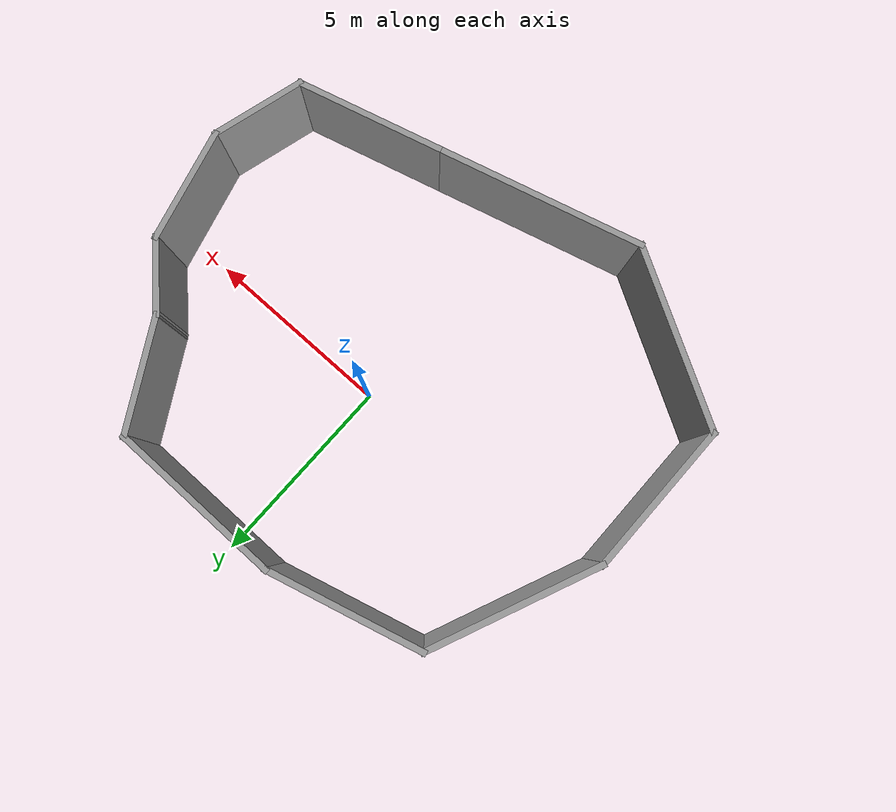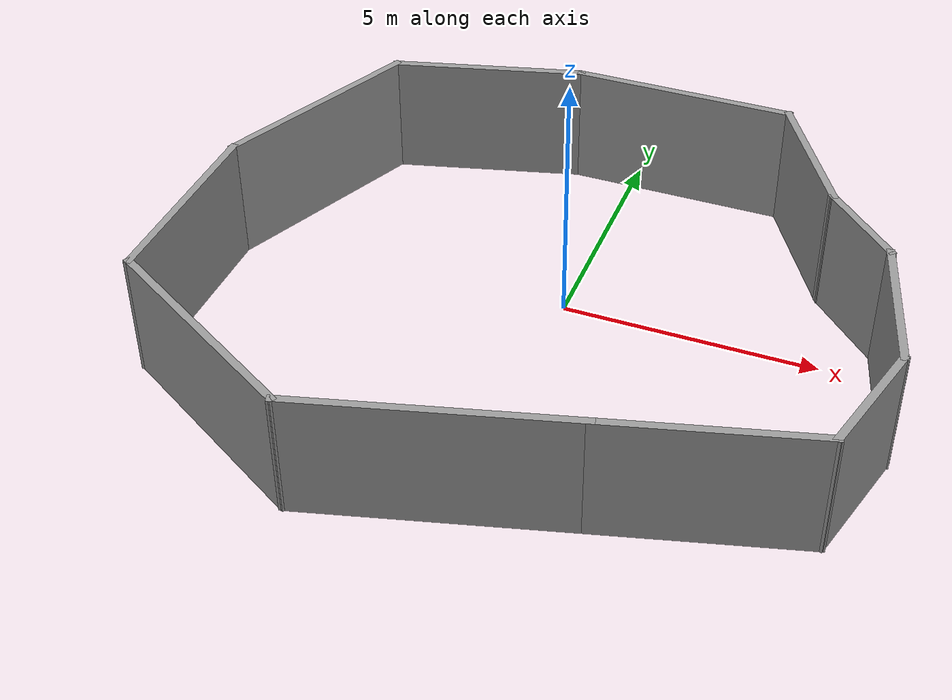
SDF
<?xml version='1.0'?>
<sdf version='1.7'>
  <model name='Untitled1'>
    <pose>-0.033269 -1.09782 0 0 -0 0</pose>
    <link name='Wall_10'>
      <collision name='Wall_10_Collision'>
        <geometry>
          <box>
            <size>3 0.15 2.5</size>
          </box>
        </geometry>
        <pose>0 0 1.25 0 -0 0</pose>
      </collision>
      <visual name='Wall_10_Visual'>
        <pose>0 0 1.25 0 -0 0</pose>
        <geometry>
          <box>
            <size>3 0.15 2.5</size>
          </box>
        </geometry>
        <material>
          <script>
            <uri>file://media/materials/scripts/gazebo.material</uri>
            <name>Gazebo/Grey</name>
          </script>
          <ambient>1 1 1 1</ambient>
        </material>
        <meta>
          <layer>0</layer>
        </meta>
      </visual>
      <pose>6.25497 0.405019 0 0 -0 1.8326</pose>
    </link>
    <link name='Wall_11'>
      <collision name='Wall_11_Collision'>
        <geometry>
          <box>
            <size>2 0.15 2.5</size>
          </box>
        </geometry>
        <pose>0 0 1.25 0 -0 0</pose>
      </collision>
      <visual name='Wall_11_Visual'>
        <pose>0 0 1.25 0 -0 0</pose>
        <geometry>
          <box>
            <size>2 0.15 2.5</size>
          </box>
        </geometry>
        <material>
          <script>
            <uri>file://media/materials/scripts/gazebo.material</uri>
            <name>Gazebo/Grey</name>
          </script>
          <ambient>1 1 1 1</ambient>
        </material>
        <meta>
          <layer>0</layer>
        </meta>
      </visual>
      <pose>5.23208 2.43554 0 0 -0 2.35619</pose>
    </link>
    <link name='Wall_12'>
      <collision name='Wall_12_Collision'>
        <geometry>
          <box>
            <size>3 0.15 2.5</size>
          </box>
        </geometry>
        <pose>0 0 1.25 0 -0 0</pose>
      </collision>
      <visual name='Wall_12_Visual'>
        <pose>0 0 1.25 0 -0 0</pose>
        <geometry>
          <box>
            <size>3 0.15 2.5</size>
          </box>
        </geometry>
        <material>
          <script>
            <uri>file://media/materials/scripts/gazebo.material</uri>
            <name>Gazebo/Grey</name>
          </script>
          <ambient>1 1 1 1</ambient>
        </material>
        <meta>
          <layer>0</layer>
        </meta>
      </visual>
      <pose>3.86551 4.3237 0 0 -0 2.0944</pose>
    </link>
    <link name='Wall_13'>
      <collision name='Wall_13_Collision'>
        <geometry>
          <box>
            <size>4.5 0.15 2.5</size>
          </box>
        </geometry>
        <pose>0 0 1.25 0 -0 0</pose>
      </collision>
      <visual name='Wall_13_Visual'>
        <pose>0 0 1.25 0 -0 0</pose>
        <geometry>
          <box>
            <size>4.5 0.15 2.5</size>
          </box>
        </geometry>
        <material>
          <script>
            <uri>file://media/materials/scripts/gazebo.material</uri>
            <name>Gazebo/Grey</name>
          </script>
          <ambient>1 1 1 1</ambient>
        </material>
        <meta>
          <layer>0</layer>
        </meta>
      </visual>
      <pose>0.978005 5.55778 0 0 -0 3.14159</pose>
    </link>
    <link name='Wall_14'>
      <collision name='Wall_14_Collision'>
        <geometry>
          <box>
            <size>4 0.15 2.5</size>
          </box>
        </geometry>
        <pose>0 0 1.25 0 -0 0</pose>
      </collision>
      <visual name='Wall_14_Visual'>
        <pose>0 0 1.25 0 -0 0</pose>
        <geometry>
          <box>
            <size>4 0.15 2.5</size>
          </box>
        </geometry>
        <material>
          <script>
            <uri>file://media/materials/scripts/gazebo.material</uri>
            <name>Gazebo/Grey</name>
          </script>
          <ambient>1 1 1 1</ambient>
        </material>
        <meta>
          <layer>0</layer>
        </meta>
      </visual>
      <pose>-3.0564 5.05956 0 0 -0 -2.87979</pose>
    </link>
    <link name='Wall_15'>
      <collision name='Wall_15_Collision'>
        <geometry>
          <box>
            <size>4.46682 0.15 2.5</size>
          </box>
        </geometry>
        <pose>0 0 1.25 0 -0 0</pose>
      </collision>
      <visual name='Wall_15_Visual'>
        <pose>0 0 1.25 0 -0 0</pose>
        <geometry>
          <box>
            <size>4.46682 0.15 2.5</size>
          </box>
        </geometry>
        <material>
          <script>
            <uri>file://media/materials/scripts/gazebo.material</uri>
            <name>Gazebo/Grey</name>
          </script>
          <ambient>1 1 1 1</ambient>
        </material>
        <meta>
          <layer>0</layer>
        </meta>
      </visual>
      <pose>-5.7645 2.57677 0 0 -0 -1.97491</pose>
    </link>
    <link name='Wall_5'>
      <collision name='Wall_5_Collision'>
        <geometry>
          <box>
            <size>4 0.15 2.5</size>
          </box>
        </geometry>
        <pose>0 0 1.25 0 -0 0</pose>
      </collision>
      <visual name='Wall_5_Visual'>
        <pose>0 0 1.25 0 -0 0</pose>
        <geometry>
          <box>
            <size>4 0.15 2.5</size>
          </box>
        </geometry>
        <material>
          <script>
            <uri>file://media/materials/scripts/gazebo.material</uri>
            <name>Gazebo/Grey</name>
          </script>
          <ambient>1 1 1 1</ambient>
        </material>
        <meta>
          <layer>0</layer>
        </meta>
      </visual>
      <pose>-6.61319 -1.33278 0 0 -0 -1.5708</pose>
    </link>
    <link name='Wall_6'>
      <collision name='Wall_6_Collision'>
        <geometry>
          <box>
            <size>4.75 0.15 2.5</size>
          </box>
        </geometry>
        <pose>0 0 1.25 0 -0 0</pose>
      </collision>
      <visual name='Wall_6_Visual'>
        <pose>0 0 1.25 0 -0 0</pose>
        <geometry>
          <box>
            <size>4.75 0.15 2.5</size>
          </box>
        </geometry>
        <material>
          <script>
            <uri>file://media/materials/scripts/gazebo.material</uri>
            <name>Gazebo/Grey</name>
          </script>
          <ambient>1 1 1 1</ambient>
        </material>
        <meta>
          <layer>0</layer>
        </meta>
      </visual>
      <pose>-4.62133 -4.40778 0 0 -0 -0.523599</pose>
    </link>
    <link name='Wall_7'>
      <collision name='Wall_7_Collision'>
        <geometry>
          <box>
            <size>5.25 0.15 2.5</size>
          </box>
        </geometry>
        <pose>0 0 1.25 0 -0 0</pose>
      </collision>
      <visual name='Wall_7_Visual'>
        <pose>0 0 1.25 0 -0 0</pose>
        <geometry>
          <box>
            <size>5.25 0.15 2.5</size>
          </box>
        </geometry>
        <material>
          <script>
            <uri>file://media/materials/scripts/gazebo.material</uri>
            <name>Gazebo/Grey</name>
          </script>
          <ambient>1 1 1 1</ambient>
        </material>
        <meta>
          <layer>0</layer>
        </meta>
      </visual>
      <pose>-0.166363 -4.89779 0 0 -0 0.261799</pose>
    </link>
    <link name='Wall_8'>
      <collision name='Wall_8_Collision'>
        <geometry>
          <box>
            <size>4 0.15 2.5</size>
          </box>
        </geometry>
        <pose>0 0 1.25 0 -0 0</pose>
      </collision>
      <visual name='Wall_8_Visual'>
        <pose>0 0 1.25 0 -0 0</pose>
        <geometry>
          <box>
            <size>4 0.15 2.5</size>
          </box>
        </geometry>
        <material>
          <script>
            <uri>file://media/materials/scripts/gazebo.material</uri>
            <name>Gazebo/Grey</name>
          </script>
          <ambient>1 1 1 1</ambient>
        </material>
        <meta>
          <layer>0</layer>
        </meta>
      </visual>
      <pose>4.15616 -3.73958 0 0 -0 0.261799</pose>
    </link>
    <link name='Wall_9'>
      <collision name='Wall_9_Collision'>
        <geometry>
          <box>
            <size>2.5 0.15 2.5</size>
          </box>
        </geometry>
        <pose>0 0 1.25 0 -0 0</pose>
      </collision>
      <visual name='Wall_9_Visual'>
        <pose>0 0 1.25 0 -0 0</pose>
        <geometry>
          <box>
            <size>2.5 0.15 2.5</size>
          </box>
        </geometry>
        <material>
          <script>
            <uri>file://media/materials/scripts/gazebo.material</uri>
            <name>Gazebo/Grey</name>
          </script>
          <ambient>1 1 1 1</ambient>
        </material>
        <meta>
          <layer>0</layer>
        </meta>
      </visual>
      <pose>6.31967 -2.10639 0 0 -0 1.309</pose>
    </link>
    <static>1</static>
  </model>
</sdf>
